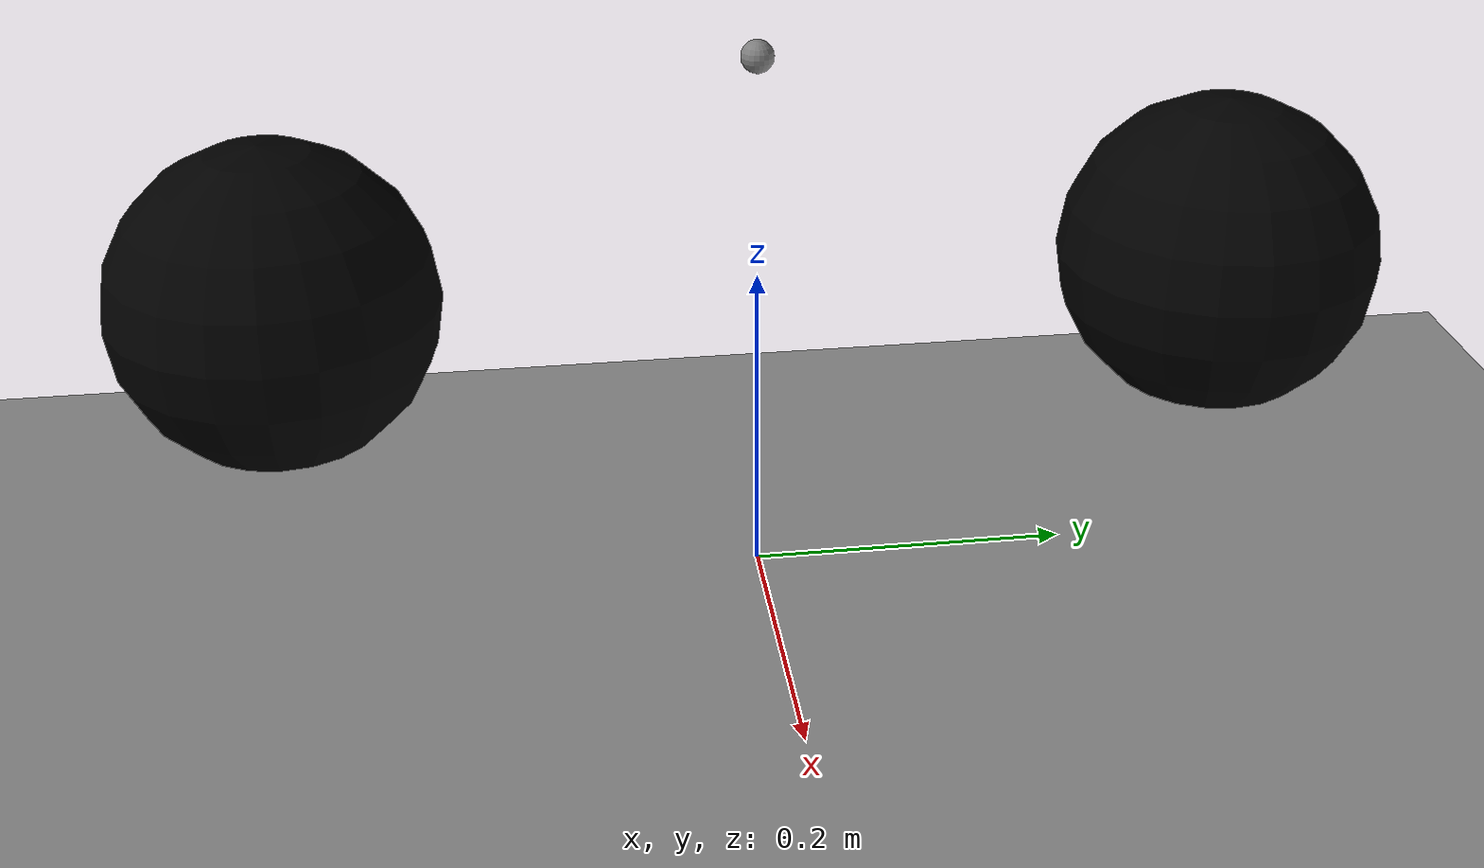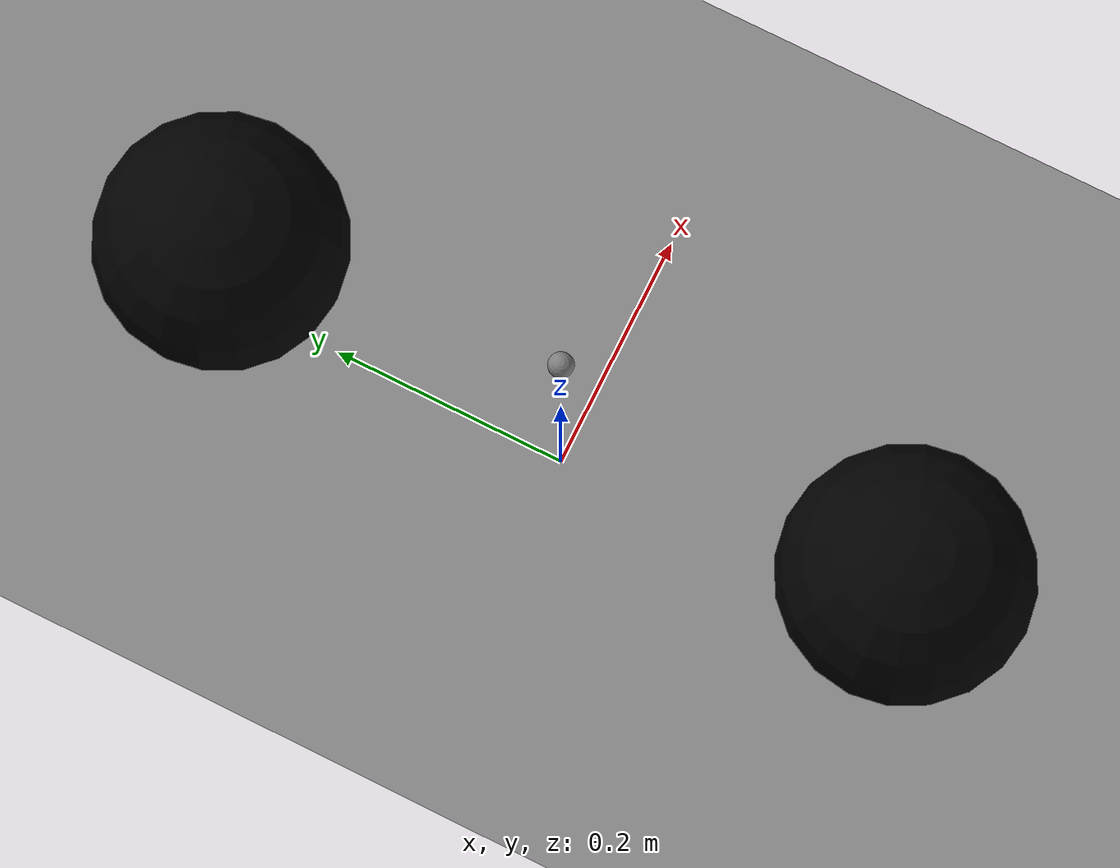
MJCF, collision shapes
<?xml version="1.0" encoding="utf-8"?>
<mujoco model="segway">
  <compiler angle="radian" meshdir="meshes"/>
  <option timestep="0.002" gravity="0 0 -9.81" integrator="RK4" iterations="100" cone="pyramidal" jacobian="dense">
    <flag contact="enable"/>
  </option>
  <default>
    <joint damping="0.01"/>
    <geom condim="4" friction="1.0 0.005 0.001" solref="0.004 1" solimp="0.9 0.95 0.001"/>
  </default>
  <asset>
    <mesh name="body_mesh" file="body.stl"/>
    <mesh name="L_wheel_mesh" file="L_wheel.stl" scale="0.52 0.52 0.52"/>
    <mesh name="R_wheel_mesh" file="R_wheel.stl" scale="0.52 0.52 0.52"/>
    <texture type="2d" name="grid" builtin="checker" rgb1="0.8 0.8 0.8" rgb2="0.3 0.3 0.3" width="512" height="512"/>
    <material name="grid_mat" texture="grid" texrepeat="8 8"/>
  </asset>
  <worldbody>
    <geom name="floor" type="plane" size="50 50 0.1" material="grid_mat"/>
    <light directional="true" pos="0 0 5" dir="0 0 -1"/>
    <body name="body" pos="0 0 0.2">
      <freejoint name="body_free"/>
      <site name="body_imu" pos="0 0 0.14" size="0.01"/>
      <inertial pos="0 0 0.14" mass="37.65" diaginertia="5.75 5.42 0.82"/>
      <geom name="body_visual" type="mesh" mesh="body_mesh" pos="0 0 0.292" rgba="0.9 0.92 0.93 1" contype="0" conaffinity="0"/>
      <geom name="body_col" type="box" size="0.15 0.25 0.2" pos="0 0 0.14" rgba="0.9 0.92 0.93 0" contype="0" conaffinity="0" mass="0"/>
      <body name="L_wheel" pos="0 0.29 0">
        <joint name="L_wheel_joint" type="hinge" axis="0 -1 0" damping="0.01"/>
        <inertial pos="0 0 0" mass="0.85" diaginertia="0.01 0.02 0.01"/>
        <geom name="L_wheel_visual" type="mesh" mesh="L_wheel_mesh" rgba="0.7 0.7 0.7 1" contype="0" conaffinity="0"/>
        <geom name="L_wheel_col" type="sphere" size="0.1" rgba="0 0 0 0" condim="4" friction="1.0 0.005 0.001" mass="0"/>
      </body>
      <body name="R_wheel" pos="0 -0.29 0">
        <joint name="R_wheel_joint" type="hinge" axis="0 1 0" damping="0.01"/>
        <inertial pos="0 0 0" mass="0.85" diaginertia="0.01 0.02 0.01"/>
        <geom name="R_wheel_visual" type="mesh" mesh="R_wheel_mesh" rgba="0.7 0.7 0.7 1" contype="0" conaffinity="0"/>
        <geom name="R_wheel_col" type="sphere" size="0.1" rgba="0 0 0 0" condim="4" friction="1.0 0.005 0.001" mass="0"/>
      </body>
    </body>
  </worldbody>
  <actuator>
    <motor name="L_wheel_torque" joint="L_wheel_joint" gear="1" ctrllimited="true" ctrlrange="-20 20"/>
    <motor name="R_wheel_torque" joint="R_wheel_joint" gear="-1" ctrllimited="true" ctrlrange="-20 20"/>
  </actuator>
  <sensor>
    <framequat name="body_quat" objtype="body" objname="body"/>
    <gyro name="body_gyro" site="body_imu"/>
    <jointpos name="L_wheel_pos" joint="L_wheel_joint"/>
    <jointpos name="R_wheel_pos" joint="R_wheel_joint"/>
    <jointvel name="L_wheel_vel" joint="L_wheel_joint"/>
    <jointvel name="R_wheel_vel" joint="R_wheel_joint"/>
  </sensor>
</mujoco>
